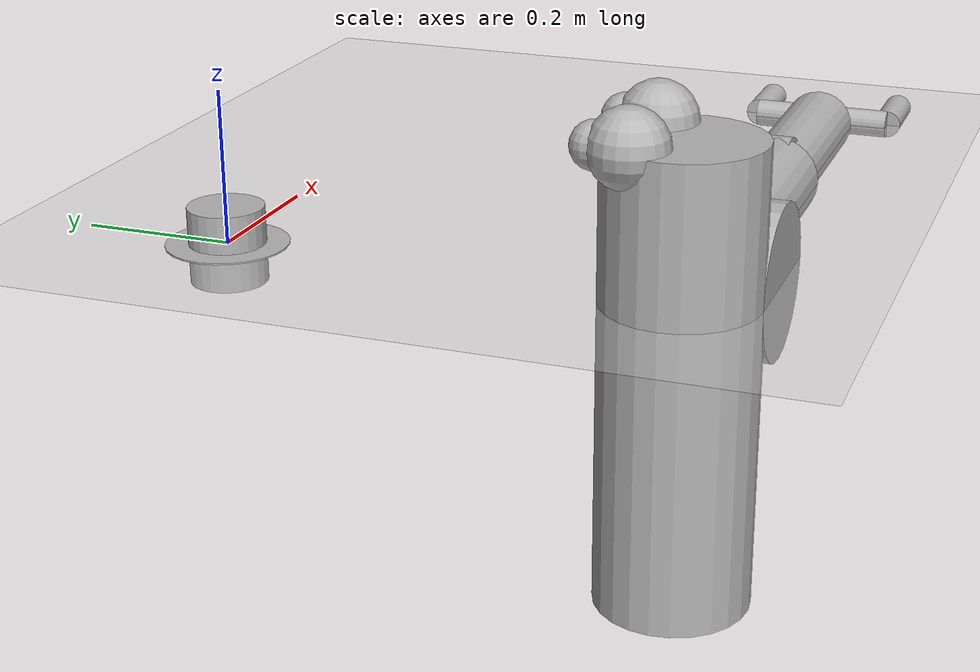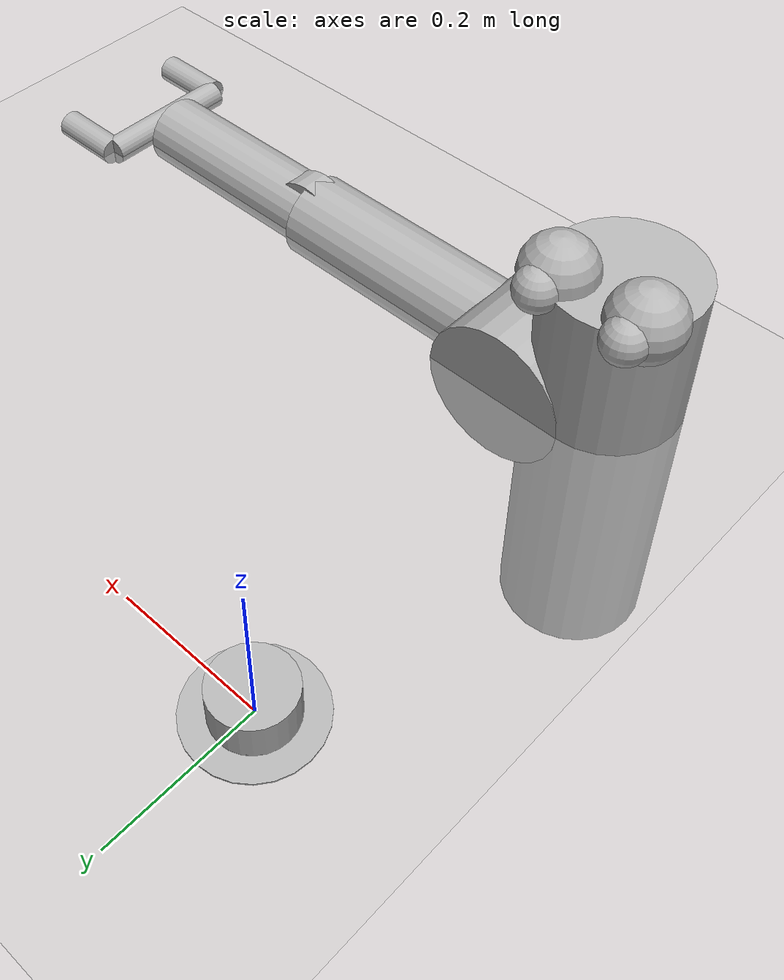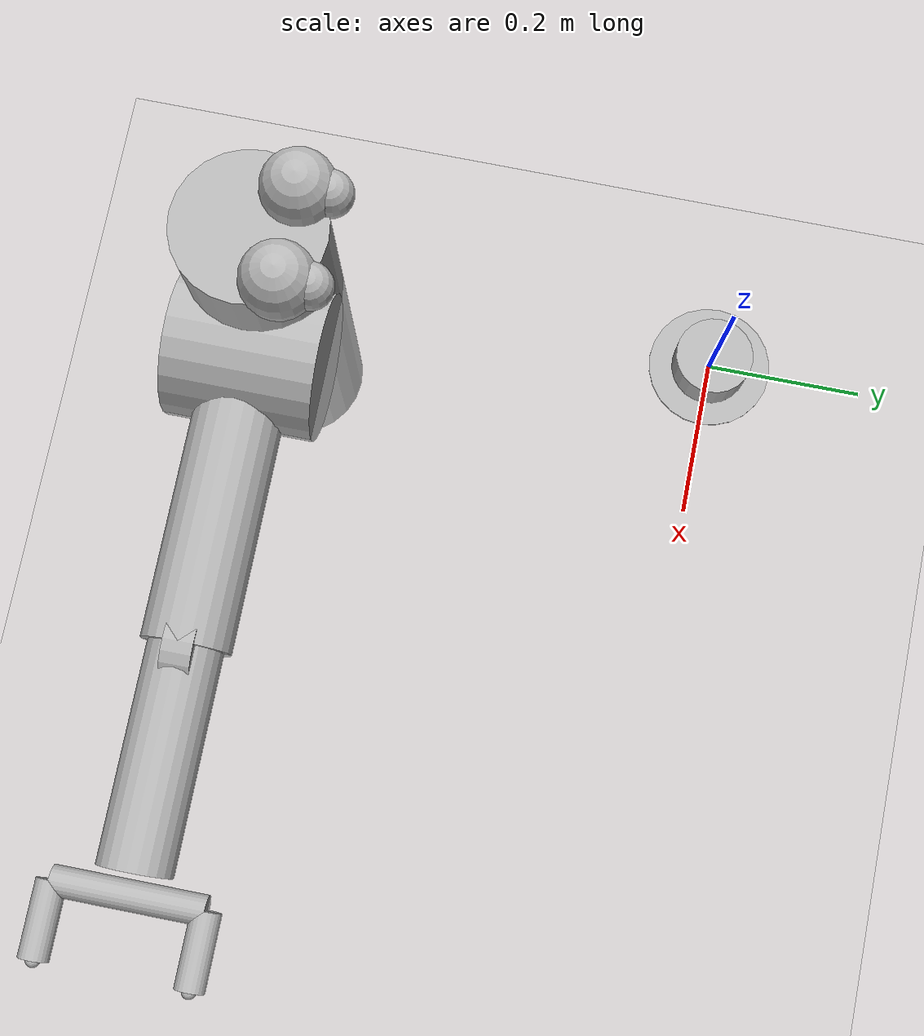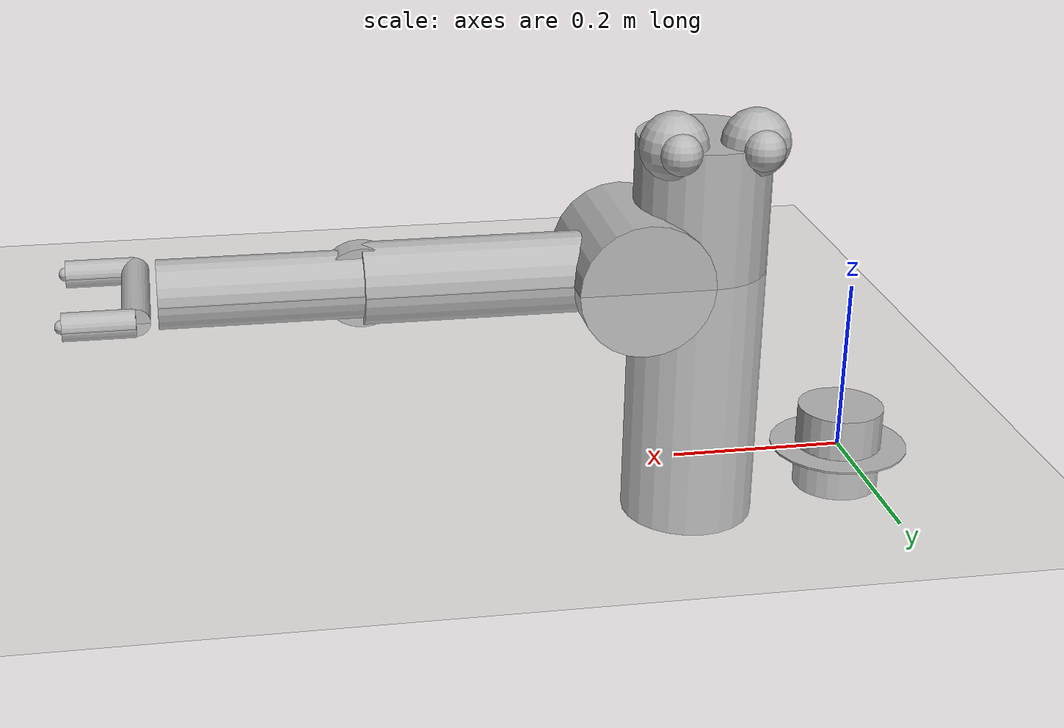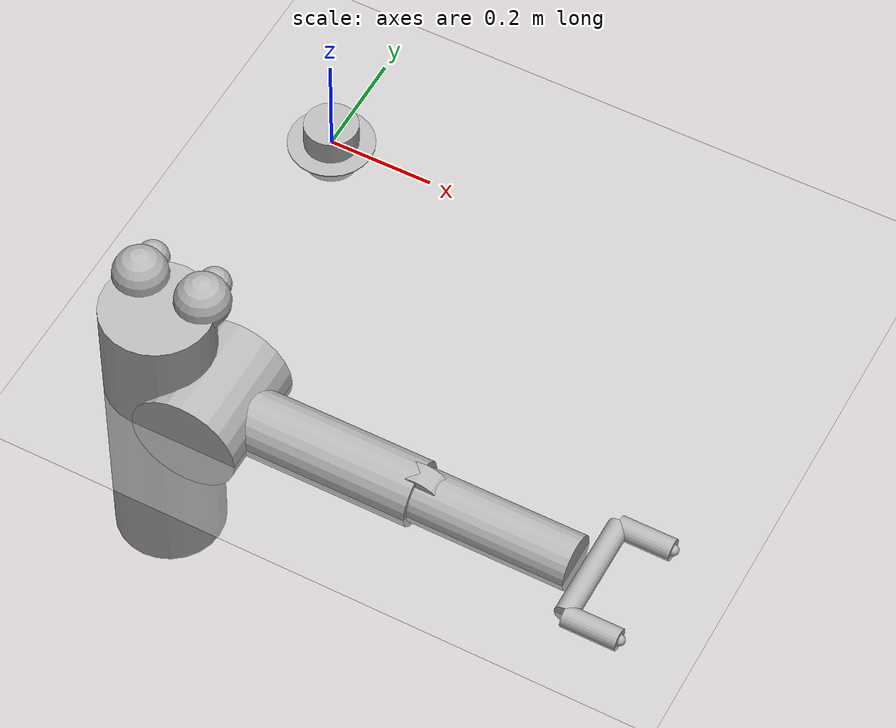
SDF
<?xml version="1.0" ?>
<sdf version="1.8">
  <world name="pusher">
    <physics name="10ms" type="ignored">
      <max_step_size>0.01</max_step_size>
      <real_time_update_rate>0</real_time_update_rate>
    </physics>
    <plugin filename="gz-sim-physics-system"           name="gz::sim::systems::Physics"/>
    <plugin filename="gz-sim-contact-system"           name="gz::sim::systems::Contact"/>
    <plugin filename="gz-sim-sensors-system"           name="gz::sim::systems::Sensors">
      <render_engine>ogre2</render_engine>
    </plugin>
    <plugin filename="gz-sim-scene-broadcaster-system" name="gz::sim::systems::SceneBroadcaster"/>
    <plugin filename="gz-sim-user-commands-system"     name="gz::sim::systems::UserCommands"/>

    <plugin
      filename="gz-sim-python-system-loader-system"
      name="gz::sim::systems::PythonSystemLoader">
      <module_name>pusher_learner</module_name>
      <agent_name>pusher</agent_name>
      <frame_skip>5</frame_skip>
    </plugin>

    <light name="sun" type="directional">
      <cast_shadows>true</cast_shadows>
      <pose>0 0 10 0 0 0</pose>
      <diffuse>0.8 0.8 0.8 1</diffuse>
      <specular>0.2 0.2 0.2 1</specular>
      <direction>-0.5 0.1 -0.9</direction>
    </light>

    <model name="ground_plane">
      <static>true</static>
      <link name="link">
        <collision name="collision">
          <geometry><plane><normal>0 0 1</normal><size>100 100</size></plane></geometry>
        </collision>
        <visual name="visual">
          <geometry><plane><normal>0 0 1</normal><size>100 100</size></plane></geometry>
          <material>
            <ambient>0.8 0.8 0.8 1</ambient>
            <diffuse>0.8 0.8 0.8 1</diffuse>
            <specular>0.8 0.8 0.8 1</specular>
          </material>
        </visual>
      </link>
    </model>

    <model name="pusher">
      <pose>0 0 0.0 0 0 0</pose>
      <include merge="true">
        <uri>package://gazebo_gymnasium_resources/models/pusher</uri>
      </include>
    </model>
  </world>
</sdf>

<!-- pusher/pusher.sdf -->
<sdf version='1.11'>
  <model name='pusher'>
    <link name='link1_1'>
      <inertial>
        <pose>0 0 0 0 0 0</pose>
        <mass>1.349218</mass>
        <inertia>
          <ixx>0.0022400079999999999</ixx>
          <ixy>0</ixy>
          <ixz>0</ixz>
          <iyy>0.0022400079999999999</iyy>
          <iyz>0</iyz>
          <izz>0.0023100080000000001</izz>
        </inertia>
      </inertial>
      <collision name='link1_1_fixed_joint_lump__goal_collision'>
        <pose>0 0 0 0 0 0</pose>
        <geometry>
          <cylinder>
            <length>0.002</length>
            <radius>0.080000000000000002</radius>
          </cylinder>
        </geometry>
      </collision>
      <visual name='link1_1_fixed_joint_lump__goal_visual'>
        <pose>0 0 0 0 0 0</pose>
        <geometry>
          <cylinder>
            <length>0.002</length>
            <radius>0.080000000000000002</radius>
          </cylinder>
        </geometry>
              <material>
          <ambient>0.5 0.5 0.5 1</ambient>
          <diffuse>0.7 0.7 0.7 1</diffuse>
          <specular>0.1 0.1 0.1 1</specular>
        </material>
      </visual>
      <collision name='link1_1_fixed_joint_lump__object_collision_1'>
        <pose>0 0 0 0 0 0</pose>
        <geometry>
          <sphere>
            <radius>0.050000000000000003</radius>
          </sphere>
        </geometry>
      </collision>
      <visual name='link1_1_fixed_joint_lump__object_1_visual'>
        <pose>0 0 0 0 0 0</pose>
        <geometry>
          <sphere>
            <radius>0.050000000000000003</radius>
          </sphere>
        </geometry>
              <material>
          <ambient>0.5 0.5 0.5 1</ambient>
          <diffuse>0.7 0.7 0.7 1</diffuse>
          <specular>0.1 0.1 0.1 1</specular>
        </material>
      </visual>
      <collision name='link1_1_fixed_joint_lump__object_collision_2'>
        <pose>0 0 0 0 0 0</pose>
        <geometry>
          <cylinder>
            <length>0.10000000000000001</length>
            <radius>0.050000000000000003</radius>
          </cylinder>
        </geometry>
      </collision>
      <visual name='link1_1_fixed_joint_lump__object_2_visual'>
        <pose>0 0 0 0 0 0</pose>
        <geometry>
          <cylinder>
            <length>0.10000000000000001</length>
            <radius>0.050000000000000003</radius>
          </cylinder>
        </geometry>
              <material>
          <ambient>0.5 0.5 0.5 1</ambient>
          <diffuse>0.7 0.7 0.7 1</diffuse>
          <specular>0.1 0.1 0.1 1</specular>
        </material>
      </visual>
    </link>
    <joint name='r_shoulder_pan_joint' type='revolute'>
      <pose relative_to='link1_1'>0 -0.59999999999999998 0 0 0 0</pose>
      <parent>link1_1</parent>
      <child>link1_2</child>
      <axis>
        <xyz>0 0 1</xyz>
        <limit>
          <lower>-2.2854000000000001</lower>
          <upper>1.7145999999999999</upper>
          <effort>0</effort>
          <velocity>0</velocity>
        </limit>
        <dynamics>
          <damping>1</damping>
          <friction>0.0001</friction>
          <spring_reference>0</spring_reference>
          <spring_stiffness>0</spring_stiffness>
        </dynamics>
      </axis>
    </joint>
    <link name='link1_2'>
      <pose relative_to='r_shoulder_pan_joint'>0 0 0 0 0 0</pose>
      <inertial>
        <pose>0 0 -0.099999995886761062 0 0 0</pose>
        <mass>24.311741000000001</mass>
        <inertia>
          <ixx>1.3946800109999991</ixx>
          <ixy>0</ixy>
          <ixz>0</ixz>
          <iyy>1.3946800109999991</iyy>
          <iyz>0</iyz>
          <izz>0.19611000100000001</izz>
        </inertia>
      </inertial>
      <collision name='link1_2_fixed_joint_lump__r_shoulder_pan_link_collision'>
        <pose>-0.059999999999999998 0.050000000000000003 0.20000000000000001 0 0 0</pose>
        <geometry>
          <sphere>
            <radius>0.050000000000000003</radius>
          </sphere>
        </geometry>
      </collision>
      <visual name='link1_2_fixed_joint_lump__r_shoulder_pan_link_visual'>
        <pose>-0.059999999999999998 0.050000000000000003 0.20000000000000001 0 0 0</pose>
        <geometry>
          <sphere>
            <radius>0.050000000000000003</radius>
          </sphere>
        </geometry>
              <material>
          <ambient>0.5 0.5 0.5 1</ambient>
          <diffuse>0.7 0.7 0.7 1</diffuse>
          <specular>0.1 0.1 0.1 1</specular>
        </material>
      </visual>
      <collision name='link1_2_fixed_joint_lump__r_shoulder_pan_link_collision_1'>
        <pose>0.059999999999999998 0.050000000000000003 0.20000000000000001 0 0 0</pose>
        <geometry>
          <sphere>
            <radius>0.050000000000000003</radius>
          </sphere>
        </geometry>
      </collision>
      <visual name='link1_2_fixed_joint_lump__r_shoulder_pan_link_1_visual'>
        <pose>0.059999999999999998 0.050000000000000003 0.20000000000000001 0 0 0</pose>
        <geometry>
          <sphere>
            <radius>0.050000000000000003</radius>
          </sphere>
        </geometry>
              <material>
          <ambient>0.5 0.5 0.5 1</ambient>
          <diffuse>0.7 0.7 0.7 1</diffuse>
          <specular>0.1 0.1 0.1 1</specular>
        </material>
      </visual>
      <collision name='link1_2_fixed_joint_lump__r_shoulder_pan_link_collision_2'>
        <pose>-0.059999999999999998 0.089999999999999997 0.20000000000000001 0 0 0</pose>
        <geometry>
          <sphere>
            <radius>0.029999999999999999</radius>
          </sphere>
        </geometry>
      </collision>
      <visual name='link1_2_fixed_joint_lump__r_shoulder_pan_link_2_visual'>
        <pose>-0.059999999999999998 0.089999999999999997 0.20000000000000001 0 0 0</pose>
        <geometry>
          <sphere>
            <radius>0.029999999999999999</radius>
          </sphere>
        </geometry>
              <material>
          <ambient>0.5 0.5 0.5 1</ambient>
          <diffuse>0.7 0.7 0.7 1</diffuse>
          <specular>0.1 0.1 0.1 1</specular>
        </material>
      </visual>
      <collision name='link1_2_fixed_joint_lump__r_shoulder_pan_link_collision_3'>
        <pose>0.059999999999999998 0.089999999999999997 0.20000000000000001 0 0 0</pose>
        <geometry>
          <sphere>
            <radius>0.029999999999999999</radius>
          </sphere>
        </geometry>
      </collision>
      <visual name='link1_2_fixed_joint_lump__r_shoulder_pan_link_3_visual'>
        <pose>0.059999999999999998 0.089999999999999997 0.20000000000000001 0 0 0</pose>
        <geometry>
          <sphere>
            <radius>0.029999999999999999</radius>
          </sphere>
        </geometry>
              <material>
          <ambient>0.5 0.5 0.5 1</ambient>
          <diffuse>0.7 0.7 0.7 1</diffuse>
          <specular>0.1 0.1 0.1 1</specular>
        </material>
      </visual>
      <collision name='link1_2_fixed_joint_lump__r_shoulder_pan_link_collision_4'>
        <pose>0 0 -0.10000000000000001 0 0 0</pose>
        <geometry>
          <cylinder>
            <length>0.59999999999999998</length>
            <radius>0.10000000000000001</radius>
          </cylinder>
        </geometry>
      </collision>
      <visual name='link1_2_fixed_joint_lump__r_shoulder_pan_link_4_visual'>
        <pose>0 0 -0.10000000000000001 0 0 0</pose>
        <geometry>
          <cylinder>
            <length>0.59999999999999998</length>
            <radius>0.10000000000000001</radius>
          </cylinder>
        </geometry>
              <material>
          <ambient>0.5 0.5 0.5 1</ambient>
          <diffuse>0.7 0.7 0.7 1</diffuse>
          <specular>0.1 0.1 0.1 1</specular>
        </material>
      </visual>
    </link>
    <joint name='r_shoulder_lift_joint' type='revolute'>
      <pose relative_to='link1_2'>0.10000000000000001 0 0 0 0 0</pose>
      <parent>link1_2</parent>
      <child>link1_4</child>
      <axis>
        <xyz>0 1 0</xyz>
        <limit>
          <lower>-0.52359999999999995</lower>
          <upper>1.3963000000000001</upper>
          <effort>0</effort>
          <velocity>0</velocity>
        </limit>
        <dynamics>
          <damping>1</damping>
          <friction>0.0001</friction>
          <spring_reference>0</spring_reference>
          <spring_stiffness>0</spring_stiffness>
        </dynamics>
      </axis>
    </joint>
    <link name='link1_4'>
      <pose relative_to='r_shoulder_lift_joint'>0 0 0 0 0 0</pose>
      <inertial>
        <pose>0 0 0 0 0 0</pose>
        <mass>10.471981</mass>
        <inertia>
          <ixx>0.17453000099999999</ixx>
          <ixy>0</ixy>
          <ixz>0</ixz>
          <iyy>0.069810000999999997</iyy>
          <iyz>0</iyz>
          <izz>0.17453000099999999</izz>
        </inertia>
      </inertial>
      <collision name='link1_4_fixed_joint_lump__r_shoulder_lift_link_collision'>
        <pose>0 0 0 -1.5708 0 0</pose>
        <geometry>
          <cylinder>
            <length>0.20000000000000001</length>
            <radius>0.10000000000000001</radius>
          </cylinder>
        </geometry>
      </collision>
      <visual name='link1_4_fixed_joint_lump__r_shoulder_lift_link_visual'>
        <pose>0 0 0 -1.5708 0 0</pose>
        <geometry>
          <cylinder>
            <length>0.20000000000000001</length>
            <radius>0.10000000000000001</radius>
          </cylinder>
        </geometry>
              <material>
          <ambient>0.5 0.5 0.5 1</ambient>
          <diffuse>0.7 0.7 0.7 1</diffuse>
          <specular>0.1 0.1 0.1 1</specular>
        </material>
      </visual>
    </link>
    <joint name='r_upper_arm_roll_joint' type='revolute'>
      <pose relative_to='link1_4'>0 0 0 0 0 0</pose>
      <parent>link1_4</parent>
      <child>link1_6</child>
      <axis>
        <xyz>1 0 0</xyz>
        <limit>
          <lower>-1.5</lower>
          <upper>1.7</upper>
          <effort>0</effort>
          <velocity>0</velocity>
        </limit>
        <dynamics>
          <damping>1</damping>
          <friction>0.0001</friction>
          <spring_reference>0</spring_reference>
          <spring_stiffness>0</spring_stiffness>
        </dynamics>
      </axis>
    </joint>
    <link name='link1_6'>
      <pose relative_to='r_upper_arm_roll_joint'>0 0 0 0 0 0</pose>
      <inertial>
        <pose>0.190029213210581 0 0 0 0 0</pose>
        <mass>5.7135109999999996</mass>
        <inertia>
          <ixx>0.013110001</ixx>
          <ixy>0</ixy>
          <ixz>0</ixz>
          <iyy>0.14107562322402309</iyy>
          <iyz>0</iyz>
          <izz>0.14107562322402309</izz>
        </inertia>
      </inertial>
      <collision name='link1_6_fixed_joint_lump__r_upper_arm_roll_link_collision'>
        <pose>0 0 0 0 1.5707963267948966 0</pose>
        <geometry>
          <cylinder>
            <length>0.20000000000000001</length>
            <radius>0.02</radius>
          </cylinder>
        </geometry>
      </collision>
      <visual name='link1_6_fixed_joint_lump__r_upper_arm_roll_link_visual'>
        <pose>0 0 0 0 1.5707963267948966 0</pose>
        <geometry>
          <cylinder>
            <length>0.20000000000000001</length>
            <radius>0.02</radius>
          </cylinder>
        </geometry>
              <material>
          <ambient>0.5 0.5 0.5 1</ambient>
          <diffuse>0.7 0.7 0.7 1</diffuse>
          <specular>0.1 0.1 0.1 1</specular>
        </material>
      </visual>
      <collision name='link1_6_fixed_joint_lump__r_upper_arm_link_collision_1'>
        <pose>0.20000000000000001 0 0 0 1.5707963267948966 0</pose>
        <geometry>
          <cylinder>
            <length>0.40000000000000002</length>
            <radius>0.059999999999999998</radius>
          </cylinder>
        </geometry>
      </collision>
      <visual name='link1_6_fixed_joint_lump__r_upper_arm_link_1_visual'>
        <pose>0.20000000000000001 0 0 0 1.5707963267948966 0</pose>
        <geometry>
          <cylinder>
            <length>0.40000000000000002</length>
            <radius>0.059999999999999998</radius>
          </cylinder>
        </geometry>
              <material>
          <ambient>0.5 0.5 0.5 1</ambient>
          <diffuse>0.7 0.7 0.7 1</diffuse>
          <specular>0.1 0.1 0.1 1</specular>
        </material>
      </visual>
    </link>
    <joint name='r_elbow_flex_joint' type='revolute'>
      <pose relative_to='link1_6'>0.40000000000000002 0 0 0 0 0</pose>
      <parent>link1_6</parent>
      <child>link1_9</child>
      <axis>
        <xyz>0 1 0</xyz>
        <limit>
          <lower>-2.3212999999999999</lower>
          <upper>0</upper>
          <effort>0</effort>
          <velocity>0</velocity>
        </limit>
        <dynamics>
          <damping>1</damping>
          <friction>0.0001</friction>
          <spring_reference>0</spring_reference>
          <spring_stiffness>0</spring_stiffness>
        </dynamics>
      </axis>
    </joint>
    <link name='link1_9'>
      <pose relative_to='r_elbow_flex_joint'>0 0 0 0 0 0</pose>
      <inertial>
        <pose>0 0 0 0 0 0</pose>
        <mass>1.3571709999999999</mass>
        <inertia>
          <ixx>0.0045200010000000001</ixx>
          <ixy>0</ixy>
          <ixz>0</ixz>
          <iyy>0.0032600009999999998</iyy>
          <iyz>0</iyz>
          <izz>0.0045200010000000001</izz>
        </inertia>
      </inertial>
      <collision name='link1_9_fixed_joint_lump__r_elbow_flex_link_collision'>
        <pose>0 0 0 -1.5708 0 0</pose>
        <geometry>
          <cylinder>
            <length>0.040000000000000001</length>
            <radius>0.059999999999999998</radius>
          </cylinder>
        </geometry>
      </collision>
      <visual name='link1_9_fixed_joint_lump__r_elbow_flex_link_visual'>
        <pose>0 0 0 -1.5708 0 0</pose>
        <geometry>
          <cylinder>
            <length>0.040000000000000001</length>
            <radius>0.059999999999999998</radius>
          </cylinder>
        </geometry>
              <material>
          <ambient>0.5 0.5 0.5 1</ambient>
          <diffuse>0.7 0.7 0.7 1</diffuse>
          <specular>0.1 0.1 0.1 1</specular>
        </material>
      </visual>
    </link>
    <joint name='r_forearm_roll_joint' type='revolute'>
      <pose relative_to='link1_9'>0 0 0 0 0 0</pose>
      <parent>link1_9</parent>
      <child>link1_11</child>
      <axis>
        <xyz>1 0 0</xyz>
        <limit>
          <lower>-1.5</lower>
          <upper>1.5</upper>
          <effort>0</effort>
          <velocity>0</velocity>
        </limit>
        <dynamics>
          <damping>1</damping>
          <friction>0.0001</friction>
          <spring_reference>0</spring_reference>
          <spring_stiffness>0</spring_stiffness>
        </dynamics>
      </axis>
    </joint>
    <link name='link1_11'>
      <pose relative_to='r_forearm_roll_joint'>0 0 0 0 0 0</pose>
      <inertial>
        <pose>0.13210471174236441 0 0 0 0 0</pose>
        <mass>3.0939510000000001</mass>
        <inertia>
          <ixx>0.0047600010000000007</ixx>
          <ixy>0</ixy>
          <ixz>0</ixz>
          <iyy>0.045014996957722701</iyy>
          <iyz>0</iyz>
          <izz>0.045014996957722701</izz>
        </inertia>
      </inertial>
      <collision name='link1_11_fixed_joint_lump__r_forearm_roll_link_collision'>
        <pose>0 0 0 0 1.5707963267948966 0</pose>
        <geometry>
          <cylinder>
            <length>0.20000000000000001</length>
            <radius>0.02</radius>
          </cylinder>
        </geometry>
      </collision>
      <visual name='link1_11_fixed_joint_lump__r_forearm_roll_link_visual'>
        <pose>0 0 0 0 1.5707963267948966 0</pose>
        <geometry>
          <cylinder>
            <length>0.20000000000000001</length>
            <radius>0.02</radius>
          </cylinder>
        </geometry>
              <material>
          <ambient>0.5 0.5 0.5 1</ambient>
          <diffuse>0.7 0.7 0.7 1</diffuse>
          <specular>0.1 0.1 0.1 1</specular>
        </material>
      </visual>
      <collision name='link1_11_fixed_joint_lump__r_forearm_link_collision_1'>
        <pose>0.14549999999999999 0 0 0 1.5707963267948966 0</pose>
        <geometry>
          <cylinder>
            <length>0.29099999999999998</length>
            <radius>0.050000000000000003</radius>
          </cylinder>
        </geometry>
      </collision>
      <visual name='link1_11_fixed_joint_lump__r_forearm_link_1_visual'>
        <pose>0.14549999999999999 0 0 0 1.5707963267948966 0</pose>
        <geometry>
          <cylinder>
            <length>0.29099999999999998</length>
            <radius>0.050000000000000003</radius>
          </cylinder>
        </geometry>
              <material>
          <ambient>0.5 0.5 0.5 1</ambient>
          <diffuse>0.7 0.7 0.7 1</diffuse>
          <specular>0.1 0.1 0.1 1</specular>
        </material>
      </visual>
    </link>
    <joint name='r_wrist_flex_joint' type='revolute'>
      <pose relative_to='link1_11'>0.32100000000000001 0 0 0 0 0</pose>
      <parent>link1_11</parent>
      <child>link1_14</child>
      <axis>
        <xyz>0 1 0</xyz>
        <limit>
          <lower>-1.0940000000000001</lower>
          <upper>0</upper>
          <effort>0</effort>
          <velocity>0</velocity>
        </limit>
        <dynamics>
          <damping>1</damping>
          <friction>0.0001</friction>
          <spring_reference>0</spring_reference>
          <spring_stiffness>0</spring_stiffness>
        </dynamics>
      </axis>
    </joint>
    <link name='link1_14'>
      <pose relative_to='r_wrist_flex_joint'>0 0 0 0 0 0</pose>
      <inertial>
        <pose>0 0 0 0 0 0</pose>
        <mass>0.016761000000000002</mass>
        <inertia>
          <ixx>1.0001e-05</ixx>
          <ixy>0</ixy>
          <ixz>0</ixz>
          <iyy>1.0000000000000001e-09</iyy>
          <iyz>0</iyz>
          <izz>1.0001e-05</izz>
        </inertia>
      </inertial>
      <collision name='link1_14_fixed_joint_lump__r_wrist_flex_link_collision'>
        <pose>0 0 0 -1.5708 0 0</pose>
        <geometry>
          <cylinder>
            <length>0.040000000000000001</length>
            <radius>0.01</radius>
          </cylinder>
        </geometry>
      </collision>
      <visual name='link1_14_fixed_joint_lump__r_wrist_flex_link_visual'>
        <pose>0 0 0 -1.5708 0 0</pose>
        <geometry>
          <cylinder>
            <length>0.040000000000000001</length>
            <radius>0.01</radius>
          </cylinder>
        </geometry>
              <material>
          <ambient>0.5 0.5 0.5 1</ambient>
          <diffuse>0.7 0.7 0.7 1</diffuse>
          <specular>0.1 0.1 0.1 1</specular>
        </material>
      </visual>
    </link>
    <joint name='r_wrist_roll_joint' type='revolute'>
      <pose relative_to='link1_14'>0 0 0 0 0 0</pose>
      <parent>link1_14</parent>
      <child>link1_16</child>
      <axis>
        <xyz>1 0 0</xyz>
        <limit>
          <lower>-1.5</lower>
          <upper>1.5</upper>
          <effort>0</effort>
          <velocity>0</velocity>
        </limit>
        <dynamics>
          <damping>1</damping>
          <friction>0.0001</friction>
          <spring_reference>0</spring_reference>
          <spring_stiffness>0</spring_stiffness>
        </dynamics>
      </axis>
    </joint>
    <link name='link1_16'>
      <pose relative_to='r_wrist_roll_joint'>0 0 0 0 0 0</pose>
      <inertial>
        <pose>0.049314797464235553 0.098629594928471093 0 0 0 0</pose>
        <mass>0.61157100000000009</mass>
        <inertia>
          <ixx>0.003092662463509554</ixx>
          <ixy>-4.1330731754777011e-05</ixy>
          <ixz>0</ixz>
          <iyy>0.0010906663658773891</iyy>
          <iyz>0</iyz>
          <izz>0.0040133278293869416</izz>
        </inertia>
      </inertial>
      <collision name='link1_16_fixed_joint_lump__r_wrist_roll_link_collision'>
        <pose>0 0 0 -1.5708 0 0</pose>
        <geometry>
          <cylinder>
            <length>0.20000000000000001</length>
            <radius>0.02</radius>
          </cylinder>
        </geometry>
      </collision>
      <visual name='link1_16_fixed_joint_lump__r_wrist_roll_link_visual'>
        <pose>0 0 0 -1.5708 0 0</pose>
        <geometry>
          <cylinder>
            <length>0.20000000000000001</length>
            <radius>0.02</radius>
          </cylinder>
        </geometry>
              <material>
          <ambient>0.5 0.5 0.5 1</ambient>
          <diffuse>0.7 0.7 0.7 1</diffuse>
          <specular>0.1 0.1 0.1 1</specular>
        </material>
      </visual>
      <collision name='link1_16_fixed_joint_lump__r_wrist_roll_link_collision_1'>
        <pose>0.050000000000000003 -0.10000000000000001 0 0 1.5707963267948966 0</pose>
        <geometry>
          <cylinder>
            <length>0.10000000000000001</length>
            <radius>0.02</radius>
          </cylinder>
        </geometry>
      </collision>
      <visual name='link1_16_fixed_joint_lump__r_wrist_roll_link_1_visual'>
        <pose>0.050000000000000003 -0.10000000000000001 0 0 1.5707963267948966 0</pose>
        <geometry>
          <cylinder>
            <length>0.10000000000000001</length>
            <radius>0.02</radius>
          </cylinder>
        </geometry>
              <material>
          <ambient>0.5 0.5 0.5 1</ambient>
          <diffuse>0.7 0.7 0.7 1</diffuse>
          <specular>0.1 0.1 0.1 1</specular>
        </material>
      </visual>
      <collision name='link1_16_fixed_joint_lump__r_wrist_roll_link_collision_2'>
        <pose>0.050000000000000003 0.10000000000000001 0 0 1.5707963267948966 0</pose>
        <geometry>
          <cylinder>
            <length>0.10000000000000001</length>
            <radius>0.02</radius>
          </cylinder>
        </geometry>
      </collision>
      <visual name='link1_16_fixed_joint_lump__r_wrist_roll_link_2_visual'>
        <pose>0.050000000000000003 0.10000000000000001 0 0 1.5707963267948966 0</pose>
        <geometry>
          <cylinder>
            <length>0.10000000000000001</length>
            <radius>0.02</radius>
          </cylinder>
        </geometry>
              <material>
          <ambient>0.5 0.5 0.5 1</ambient>
          <diffuse>0.7 0.7 0.7 1</diffuse>
          <specular>0.1 0.1 0.1 1</specular>
        </material>
      </visual>
      <collision name='link1_16_fixed_joint_lump__tips_arm_collision_3'>
        <pose>0.10000000000000001 -0.10000000000000001 0 0 0 0</pose>
        <geometry>
          <sphere>
            <radius>0.01</radius>
          </sphere>
        </geometry>
      </collision>
      <visual name='link1_16_fixed_joint_lump__tips_arm_3_visual'>
        <pose>0.10000000000000001 -0.10000000000000001 0 0 0 0</pose>
        <geometry>
          <sphere>
            <radius>0.01</radius>
          </sphere>
        </geometry>
              <material>
          <ambient>0.5 0.5 0.5 1</ambient>
          <diffuse>0.7 0.7 0.7 1</diffuse>
          <specular>0.1 0.1 0.1 1</specular>
        </material>
      </visual>
      <collision name='link1_16_fixed_joint_lump__tips_arm_collision_4'>
        <pose>0.10000000000000001 0.10000000000000001 0 0 0 0</pose>
        <geometry>
          <sphere>
            <radius>0.01</radius>
          </sphere>
        </geometry>
      </collision>
      <visual name='link1_16_fixed_joint_lump__tips_arm_4_visual'>
        <pose>0.10000000000000001 0.10000000000000001 0 0 0 0</pose>
        <geometry>
          <sphere>
            <radius>0.01</radius>
          </sphere>
        </geometry>
              <material>
          <ambient>0.5 0.5 0.5 1</ambient>
          <diffuse>0.7 0.7 0.7 1</diffuse>
          <specular>0.1 0.1 0.1 1</specular>
        </material>
      </visual>
    </link>

</model>
</sdf>
